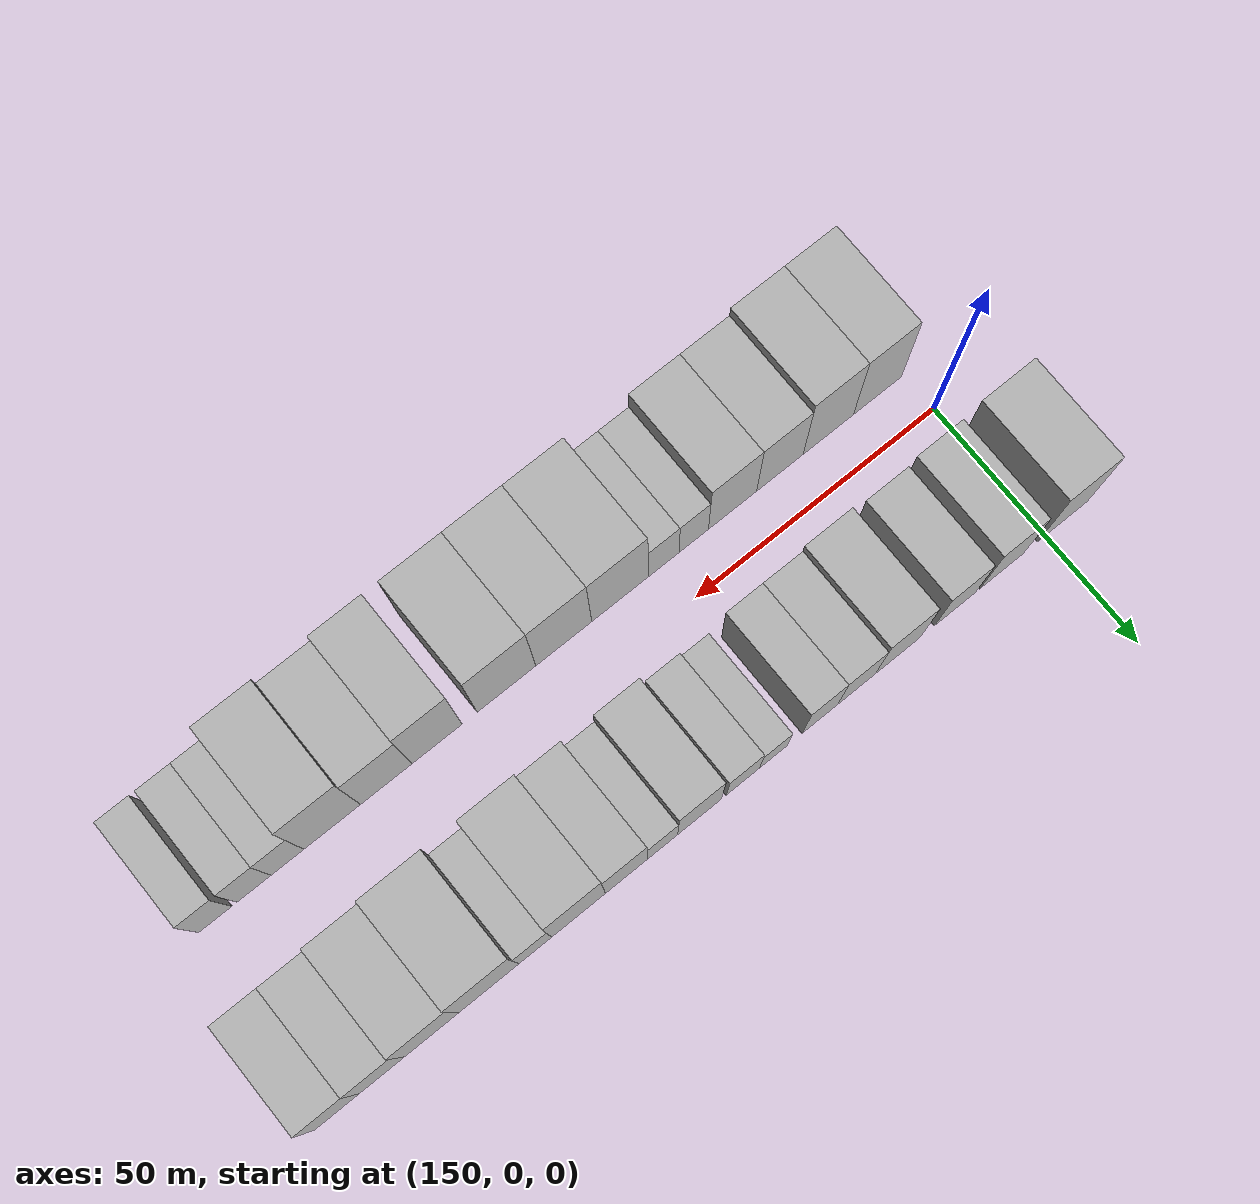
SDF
<sdf version="1.6">
 <world name="default">
  <model name="building_17">
   <static>1</static>
   <pose>146.2509 17.5000 0 0.000000 0.000000 1.570796</pose>
   <link name="link">
    <pose>0 0 12.00 0 0 0</pose>
    <collision name="collision"><geometry><box><size>20.0000 10.6883 24.0000</size></box></geometry></collision>
    <visual name="visual">
     <cast_shadows>0</cast_shadows>
     <geometry><box><size>20.0000 10.6883 24.0000</size></box></geometry>
     <material>
      <script>
       <uri>model://HANNAS_wall/materials/scripts</uri>
       <uri>model://HANNAS_wall/materials/textures</uri>
       <name>vrc/HANNAS_wall</name>
      </script>
     </material>
    </visual>
   </link>
  </model>
  <model name="building_18">
   <static>1</static>
   <pose>159.2316 17.5000 0 0.000000 0.000000 1.570796</pose>
   <link name="link">
    <pose>0 0 10.50 0 0 0</pose>
    <collision name="collision"><geometry><box><size>20.0000 9.2732 21.0000</size></box></geometry></collision>
    <visual name="visual">
     <cast_shadows>0</cast_shadows>
     <geometry><box><size>20.0000 9.2732 21.0000</size></box></geometry>
     <material>
      <script>
       <uri>model://HANNAS_wall/materials/scripts</uri>
       <uri>model://HANNAS_wall/materials/textures</uri>
       <name>vrc/HANNAS_wall</name>
      </script>
     </material>
    </visual>
   </link>
  </model>
  <model name="building_19">
   <static>1</static>
   <pose>169.1585 17.5000 0 0.000000 0.000000 1.570796</pose>
   <link name="link">
    <pose>0 0 9.00 0 0 0</pose>
    <collision name="collision"><geometry><box><size>20.0000 8.5805 18.0000</size></box></geometry></collision>
    <visual name="visual">
     <cast_shadows>0</cast_shadows>
     <geometry><box><size>20.0000 8.5805 18.0000</size></box></geometry>
     <material>
      <script>
       <uri>model://HANNAS_wall/materials/scripts</uri>
       <uri>model://HANNAS_wall/materials/textures</uri>
       <name>vrc/HANNAS_wall</name>
      </script>
     </material>
    </visual>
   </link>
  </model>
  <model name="building_20">
   <static>1</static>
   <pose>181.1733 17.5000 0 0.000000 0.000000 1.570796</pose>
   <link name="link">
    <pose>0 0 10.50 0 0 0</pose>
    <collision name="collision"><geometry><box><size>20.0000 9.4491 21.0000</size></box></geometry></collision>
    <visual name="visual">
     <cast_shadows>0</cast_shadows>
     <geometry><box><size>20.0000 9.4491 21.0000</size></box></geometry>
     <material>
      <script>
       <uri>model://HANNAS_wall/materials/scripts</uri>
       <uri>model://HANNAS_wall/materials/textures</uri>
       <name>vrc/HANNAS_wall</name>
      </script>
     </material>
    </visual>
   </link>
  </model>
  <model name="building_21">
   <static>1</static>
   <pose>189.8039 17.5000 0 0.000000 0.000000 1.570796</pose>
   <link name="link">
    <pose>0 0 9.00 0 0 0</pose>
    <collision name="collision"><geometry><box><size>20.0000 7.8122 18.0000</size></box></geometry></collision>
    <visual name="visual">
     <cast_shadows>0</cast_shadows>
     <geometry><box><size>20.0000 7.8122 18.0000</size></box></geometry>
     <material>
      <script>
       <uri>model://HANNAS_wall/materials/scripts</uri>
       <uri>model://HANNAS_wall/materials/textures</uri>
       <name>vrc/HANNAS_wall</name>
      </script>
     </material>
    </visual>
   </link>
  </model>
  <model name="building_22">
   <static>1</static>
   <pose>197.3425 17.5000 0 0.000000 0.000000 1.570796</pose>
   <link name="link">
    <pose>0 0 9.00 0 0 0</pose>
    <collision name="collision"><geometry><box><size>20.0000 7.2649 18.0000</size></box></geometry></collision>
    <visual name="visual">
     <cast_shadows>0</cast_shadows>
     <geometry><box><size>20.0000 7.2649 18.0000</size></box></geometry>
     <material>
      <script>
       <uri>model://HANNAS_wall/materials/scripts</uri>
       <uri>model://HANNAS_wall/materials/textures</uri>
       <name>vrc/HANNAS_wall</name>
      </script>
     </material>
    </visual>
   </link>
  </model>
  <model name="building_23">
   <static>1</static>
   <pose>206.8565 17.5000 0 0.000000 0.000000 1.570796</pose>
   <link name="link">
    <pose>0 0 6.00 0 0 0</pose>
    <collision name="collision"><geometry><box><size>20.0000 5.7632 12.0000</size></box></geometry></collision>
    <visual name="visual">
     <cast_shadows>0</cast_shadows>
     <geometry><box><size>20.0000 5.7632 12.0000</size></box></geometry>
     <material>
      <script>
       <uri>model://HANNAS_wall/materials/scripts</uri>
       <uri>model://HANNAS_wall/materials/textures</uri>
       <name>vrc/HANNAS_wall</name>
      </script>
     </material>
    </visual>
   </link>
  </model>
  <model name="building_24">
   <static>1</static>
   <pose>213.1314 17.5000 0 0.000000 0.000000 1.570796</pose>
   <link name="link">
    <pose>0 0 7.50 0 0 0</pose>
    <collision name="collision"><geometry><box><size>20.0000 6.7866 15.0000</size></box></geometry></collision>
    <visual name="visual">
     <cast_shadows>0</cast_shadows>
     <geometry><box><size>20.0000 6.7866 15.0000</size></box></geometry>
     <material>
      <script>
       <uri>model://HANNAS_wall/materials/scripts</uri>
       <uri>model://HANNAS_wall/materials/textures</uri>
       <name>vrc/HANNAS_wall</name>
      </script>
     </material>
    </visual>
   </link>
  </model>
  <model name="building_25">
   <static>1</static>
   <pose>221.9245 17.5000 0 0.000000 0.000000 1.570796</pose>
   <link name="link">
    <pose>0 0 10.50 0 0 0</pose>
    <collision name="collision"><geometry><box><size>20.0000 8.7995 21.0000</size></box></geometry></collision>
    <visual name="visual">
     <cast_shadows>0</cast_shadows>
     <geometry><box><size>20.0000 8.7995 21.0000</size></box></geometry>
     <material>
      <script>
       <uri>model://HANNAS_wall/materials/scripts</uri>
       <uri>model://HANNAS_wall/materials/textures</uri>
       <name>vrc/HANNAS_wall</name>
      </script>
     </material>
    </visual>
   </link>
  </model>
  <model name="building_26">
   <static>1</static>
   <pose>229.3442 17.5000 0 0.000000 0.000000 1.570796</pose>
   <link name="link">
    <pose>0 0 7.50 0 0 0</pose>
    <collision name="collision"><geometry><box><size>20.0000 6.0399 15.0000</size></box></geometry></collision>
    <visual name="visual">
     <cast_shadows>0</cast_shadows>
     <geometry><box><size>20.0000 6.0399 15.0000</size></box></geometry>
     <material>
      <script>
       <uri>model://HANNAS_wall/materials/scripts</uri>
       <uri>model://HANNAS_wall/materials/textures</uri>
       <name>vrc/HANNAS_wall</name>
      </script>
     </material>
    </visual>
   </link>
  </model>
  <model name="building_27">
   <static>1</static>
   <pose>236.5694 17.5000 0 0.000000 0.000000 1.570796</pose>
   <link name="link">
    <pose>0 0 10.50 0 0 0</pose>
    <collision name="collision"><geometry><box><size>20.0000 8.4105 21.0000</size></box></geometry></collision>
    <visual name="visual">
     <cast_shadows>0</cast_shadows>
     <geometry><box><size>20.0000 8.4105 21.0000</size></box></geometry>
     <material>
      <script>
       <uri>model://HANNAS_wall/materials/scripts</uri>
       <uri>model://HANNAS_wall/materials/textures</uri>
       <name>vrc/HANNAS_wall</name>
      </script>
     </material>
    </visual>
   </link>
  </model>
  <model name="building_28">
   <static>1</static>
   <pose>246.0889 17.5000 0 0.000000 0.000000 1.570796</pose>
   <link name="link">
    <pose>0 0 12.00 0 0 0</pose>
    <collision name="collision"><geometry><box><size>20.0000 10.6284 24.0000</size></box></geometry></collision>
    <visual name="visual">
     <cast_shadows>0</cast_shadows>
     <geometry><box><size>20.0000 10.6284 24.0000</size></box></geometry>
     <material>
      <script>
       <uri>model://HANNAS_wall/materials/scripts</uri>
       <uri>model://HANNAS_wall/materials/textures</uri>
       <name>vrc/HANNAS_wall</name>
      </script>
     </material>
    </visual>
   </link>
  </model>
  <model name="building_29">
   <static>1</static>
   <pose>254.6032 17.5000 0 0.000000 0.000000 1.570796</pose>
   <link name="link">
    <pose>0 0 7.50 0 0 0</pose>
    <collision name="collision"><geometry><box><size>20.0000 6.4003 15.0000</size></box></geometry></collision>
    <visual name="visual">
     <cast_shadows>0</cast_shadows>
     <geometry><box><size>20.0000 6.4003 15.0000</size></box></geometry>
     <material>
      <script>
       <uri>model://HANNAS_wall/materials/scripts</uri>
       <uri>model://HANNAS_wall/materials/textures</uri>
       <name>vrc/HANNAS_wall</name>
      </script>
     </material>
    </visual>
   </link>
  </model>
  <model name="building_30">
   <static>1</static>
   <pose>263.6817 17.5000 0 0.000000 0.000000 1.570796</pose>
   <link name="link">
    <pose>0 0 12.00 0 0 0</pose>
    <collision name="collision"><geometry><box><size>20.0000 11.7566 24.0000</size></box></geometry></collision>
    <visual name="visual">
     <cast_shadows>0</cast_shadows>
     <geometry><box><size>20.0000 11.7566 24.0000</size></box></geometry>
     <material>
      <script>
       <uri>model://HANNAS_wall/materials/scripts</uri>
       <uri>model://HANNAS_wall/materials/textures</uri>
       <name>vrc/HANNAS_wall</name>
      </script>
     </material>
    </visual>
   </link>
  </model>
  <model name="building_31">
   <static>1</static>
   <pose>274.8075 17.5000 0 0.000000 0.000000 1.570796</pose>
   <link name="link">
    <pose>0 0 10.50 0 0 0</pose>
    <collision name="collision"><geometry><box><size>20.0000 10.4951 21.0000</size></box></geometry></collision>
    <visual name="visual">
     <cast_shadows>0</cast_shadows>
     <geometry><box><size>20.0000 10.4951 21.0000</size></box></geometry>
     <material>
      <script>
       <uri>model://HANNAS_wall/materials/scripts</uri>
       <uri>model://HANNAS_wall/materials/textures</uri>
       <name>vrc/HANNAS_wall</name>
      </script>
     </material>
    </visual>
   </link>
  </model>
  <model name="building_32">
   <static>1</static>
   <pose>284.4045 17.5000 0 0.000000 0.000000 1.570796</pose>
   <link name="link">
    <pose>0 0 9.00 0 0 0</pose>
    <collision name="collision"><geometry><box><size>20.0000 8.6988 18.0000</size></box></geometry></collision>
    <visual name="visual">
     <cast_shadows>0</cast_shadows>
     <geometry><box><size>20.0000 8.6988 18.0000</size></box></geometry>
     <material>
      <script>
       <uri>model://HANNAS_wall/materials/scripts</uri>
       <uri>model://HANNAS_wall/materials/textures</uri>
       <name>vrc/HANNAS_wall</name>
      </script>
     </material>
    </visual>
   </link>
  </model>
  <model name="building_33">
   <static>1</static>
   <pose>293.0578 17.5000 0 0.000000 0.000000 1.570796</pose>
   <link name="link">
    <pose>0 0 9.00 0 0 0</pose>
    <collision name="collision"><geometry><box><size>20.0000 8.6078 18.0000</size></box></geometry></collision>
    <visual name="visual">
     <cast_shadows>0</cast_shadows>
     <geometry><box><size>20.0000 8.6078 18.0000</size></box></geometry>
     <material>
      <script>
       <uri>model://HANNAS_wall/materials/scripts</uri>
       <uri>model://HANNAS_wall/materials/textures</uri>
       <name>vrc/HANNAS_wall</name>
      </script>
     </material>
    </visual>
   </link>
  </model>
  <model name="building_47">
   <static>1</static>
   <pose>155.6745 -17.5000 0 0.000000 0.000000 1.570796</pose>
   <link name="link">
    <pose>0 0 12.00 0 0 0</pose>
    <collision name="collision"><geometry><box><size>20.0000 10.2958 24.0000</size></box></geometry></collision>
    <visual name="visual">
     <cast_shadows>0</cast_shadows>
     <geometry><box><size>20.0000 10.2958 24.0000</size></box></geometry>
     <material>
      <script>
       <uri>model://HANNAS_wall/materials/scripts</uri>
       <uri>model://HANNAS_wall/materials/textures</uri>
       <name>vrc/HANNAS_wall</name>
      </script>
     </material>
    </visual>
   </link>
  </model>
  <model name="building_48">
   <static>1</static>
   <pose>166.1675 -17.5000 0 0.000000 0.000000 1.570796</pose>
   <link name="link">
    <pose>0 0 12.00 0 0 0</pose>
    <collision name="collision"><geometry><box><size>20.0000 10.6901 24.0000</size></box></geometry></collision>
    <visual name="visual">
     <cast_shadows>0</cast_shadows>
     <geometry><box><size>20.0000 10.6901 24.0000</size></box></geometry>
     <material>
      <script>
       <uri>model://HANNAS_wall/materials/scripts</uri>
       <uri>model://HANNAS_wall/materials/textures</uri>
       <name>vrc/HANNAS_wall</name>
      </script>
     </material>
    </visual>
   </link>
  </model>
  <model name="building_49">
   <static>1</static>
   <pose>176.3931 -17.5000 0 0.000000 0.000000 1.570796</pose>
   <link name="link">
    <pose>0 0 10.50 0 0 0</pose>
    <collision name="collision"><geometry><box><size>20.0000 9.7612 21.0000</size></box></geometry></collision>
    <visual name="visual">
     <cast_shadows>0</cast_shadows>
     <geometry><box><size>20.0000 9.7612 21.0000</size></box></geometry>
     <material>
      <script>
       <uri>model://HANNAS_wall/materials/scripts</uri>
       <uri>model://HANNAS_wall/materials/textures</uri>
       <name>vrc/HANNAS_wall</name>
      </script>
     </material>
    </visual>
   </link>
  </model>
  <model name="building_50">
   <static>1</static>
   <pose>186.3276 -17.5000 0 0.000000 0.000000 1.570796</pose>
   <link name="link">
    <pose>0 0 10.50 0 0 0</pose>
    <collision name="collision"><geometry><box><size>20.0000 10.1078 21.0000</size></box></geometry></collision>
    <visual name="visual">
     <cast_shadows>0</cast_shadows>
     <geometry><box><size>20.0000 10.1078 21.0000</size></box></geometry>
     <material>
      <script>
       <uri>model://HANNAS_wall/materials/scripts</uri>
       <uri>model://HANNAS_wall/materials/textures</uri>
       <name>vrc/HANNAS_wall</name>
      </script>
     </material>
    </visual>
   </link>
  </model>
  <model name="building_51">
   <static>1</static>
   <pose>194.4283 -17.5000 0 0.000000 0.000000 1.570796</pose>
   <link name="link">
    <pose>0 0 7.50 0 0 0</pose>
    <collision name="collision"><geometry><box><size>20.0000 6.0935 15.0000</size></box></geometry></collision>
    <visual name="visual">
     <cast_shadows>0</cast_shadows>
     <geometry><box><size>20.0000 6.0935 15.0000</size></box></geometry>
     <material>
      <script>
       <uri>model://HANNAS_wall/materials/scripts</uri>
       <uri>model://HANNAS_wall/materials/textures</uri>
       <name>vrc/HANNAS_wall</name>
      </script>
     </material>
    </visual>
   </link>
  </model>
  <model name="building_52">
   <static>1</static>
   <pose>200.6329 -17.5000 0 0.000000 0.000000 1.570796</pose>
   <link name="link">
    <pose>0 0 7.50 0 0 0</pose>
    <collision name="collision"><geometry><box><size>20.0000 6.3158 15.0000</size></box></geometry></collision>
    <visual name="visual">
     <cast_shadows>0</cast_shadows>
     <geometry><box><size>20.0000 6.3158 15.0000</size></box></geometry>
     <material>
      <script>
       <uri>model://HANNAS_wall/materials/scripts</uri>
       <uri>model://HANNAS_wall/materials/textures</uri>
       <name>vrc/HANNAS_wall</name>
      </script>
     </material>
    </visual>
   </link>
  </model>
  <model name="building_53">
   <static>1</static>
   <pose>209.6123 -17.5000 0 0.000000 0.000000 1.570796</pose>
   <link name="link">
    <pose>0 0 12.00 0 0 0</pose>
    <collision name="collision"><geometry><box><size>20.0000 11.6429 24.0000</size></box></geometry></collision>
    <visual name="visual">
     <cast_shadows>0</cast_shadows>
     <geometry><box><size>20.0000 11.6429 24.0000</size></box></geometry>
     <material>
      <script>
       <uri>model://HANNAS_wall/materials/scripts</uri>
       <uri>model://HANNAS_wall/materials/textures</uri>
       <name>vrc/HANNAS_wall</name>
      </script>
     </material>
    </visual>
   </link>
  </model>
  <model name="building_54">
   <static>1</static>
   <pose>221.1209 -17.5000 0 0.000000 0.000000 1.570796</pose>
   <link name="link">
    <pose>0 0 12.00 0 0 0</pose>
    <collision name="collision"><geometry><box><size>20.0000 11.3744 24.0000</size></box></geometry></collision>
    <visual name="visual">
     <cast_shadows>0</cast_shadows>
     <geometry><box><size>20.0000 11.3744 24.0000</size></box></geometry>
     <material>
      <script>
       <uri>model://HANNAS_wall/materials/scripts</uri>
       <uri>model://HANNAS_wall/materials/textures</uri>
       <name>vrc/HANNAS_wall</name>
      </script>
     </material>
    </visual>
   </link>
  </model>
  <model name="building_55">
   <static>1</static>
   <pose>232.7196 -17.5000 0 0.000000 0.000000 1.570796</pose>
   <link name="link">
    <pose>0 0 12.00 0 0 0</pose>
    <collision name="collision"><geometry><box><size>20.0000 11.8230 24.0000</size></box></geometry></collision>
    <visual name="visual">
     <cast_shadows>0</cast_shadows>
     <geometry><box><size>20.0000 11.8230 24.0000</size></box></geometry>
     <material>
      <script>
       <uri>model://HANNAS_wall/materials/scripts</uri>
       <uri>model://HANNAS_wall/materials/textures</uri>
       <name>vrc/HANNAS_wall</name>
      </script>
     </material>
    </visual>
   </link>
  </model>
  <model name="building_56">
   <static>1</static>
   <pose>246.6430 -17.5000 0 0.000000 0.000000 1.570796</pose>
   <link name="link">
    <pose>0 0 12.00 0 0 0</pose>
    <collision name="collision"><geometry><box><size>20.0000 10.0236 24.0000</size></box></geometry></collision>
    <visual name="visual">
     <cast_shadows>0</cast_shadows>
     <geometry><box><size>20.0000 10.0236 24.0000</size></box></geometry>
     <material>
      <script>
       <uri>model://HANNAS_wall/materials/scripts</uri>
       <uri>model://HANNAS_wall/materials/textures</uri>
       <name>vrc/HANNAS_wall</name>
      </script>
     </material>
    </visual>
   </link>
  </model>
  <model name="building_57">
   <static>1</static>
   <pose>256.7400 -17.5000 0 0.000000 0.000000 1.570796</pose>
   <link name="link">
    <pose>0 0 10.50 0 0 0</pose>
    <collision name="collision"><geometry><box><size>20.0000 10.1704 21.0000</size></box></geometry></collision>
    <visual name="visual">
     <cast_shadows>0</cast_shadows>
     <geometry><box><size>20.0000 10.1704 21.0000</size></box></geometry>
     <material>
      <script>
       <uri>model://HANNAS_wall/materials/scripts</uri>
       <uri>model://HANNAS_wall/materials/textures</uri>
       <name>vrc/HANNAS_wall</name>
      </script>
     </material>
    </visual>
   </link>
  </model>
  <model name="building_58">
   <static>1</static>
   <pose>267.3778 -17.5000 0 0.000000 0.000000 1.570796</pose>
   <link name="link">
    <pose>0 0 12.00 0 0 0</pose>
    <collision name="collision"><geometry><box><size>20.0000 11.1052 24.0000</size></box></geometry></collision>
    <visual name="visual">
     <cast_shadows>0</cast_shadows>
     <geometry><box><size>20.0000 11.1052 24.0000</size></box></geometry>
     <material>
      <script>
       <uri>model://HANNAS_wall/materials/scripts</uri>
       <uri>model://HANNAS_wall/materials/textures</uri>
       <name>vrc/HANNAS_wall</name>
      </script>
     </material>
    </visual>
   </link>
  </model>
  <model name="building_59">
   <static>1</static>
   <pose>276.1302 -17.5000 0 0.000000 0.000000 1.570796</pose>
   <link name="link">
    <pose>0 0 7.50 0 0 0</pose>
    <collision name="collision"><geometry><box><size>20.0000 6.3997 15.0000</size></box></geometry></collision>
    <visual name="visual">
     <cast_shadows>0</cast_shadows>
     <geometry><box><size>20.0000 6.3997 15.0000</size></box></geometry>
     <material>
      <script>
       <uri>model://HANNAS_wall/materials/scripts</uri>
       <uri>model://HANNAS_wall/materials/textures</uri>
       <name>vrc/HANNAS_wall</name>
      </script>
     </material>
    </visual>
   </link>
  </model>
  <model name="building_60">
   <static>1</static>
   <pose>282.6295 -17.5000 0 0.000000 0.000000 1.570796</pose>
   <link name="link">
    <pose>0 0 7.50 0 0 0</pose>
    <collision name="collision"><geometry><box><size>20.0000 6.5988 15.0000</size></box></geometry></collision>
    <visual name="visual">
     <cast_shadows>0</cast_shadows>
     <geometry><box><size>20.0000 6.5988 15.0000</size></box></geometry>
     <material>
      <script>
       <uri>model://HANNAS_wall/materials/scripts</uri>
       <uri>model://HANNAS_wall/materials/textures</uri>
       <name>vrc/HANNAS_wall</name>
      </script>
     </material>
    </visual>
   </link>
  </model>
  <model name="building_61">
   <static>1</static>
   <pose>290.1322 -17.5000 0 0.000000 0.000000 1.570796</pose>
   <link name="link">
    <pose>0 0 7.50 0 0 0</pose>
    <collision name="collision"><geometry><box><size>20.0000 6.4065 15.0000</size></box></geometry></collision>
    <visual name="visual">
     <cast_shadows>0</cast_shadows>
     <geometry><box><size>20.0000 6.4065 15.0000</size></box></geometry>
     <material>
      <script>
       <uri>model://HANNAS_wall/materials/scripts</uri>
       <uri>model://HANNAS_wall/materials/textures</uri>
       <name>vrc/HANNAS_wall</name>
      </script>
     </material>
    </visual>
   </link>
  </model>
 </world>
</sdf>
